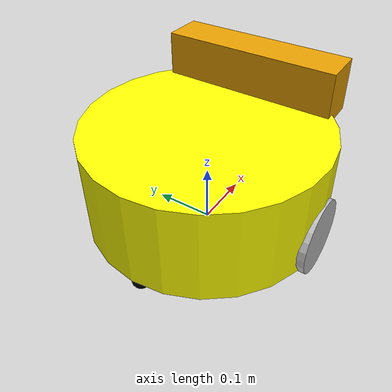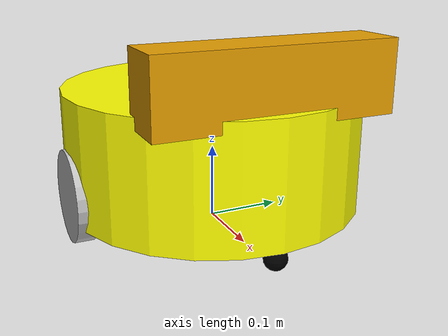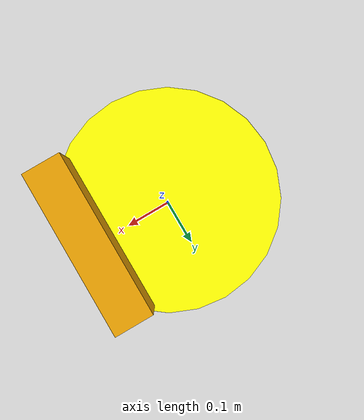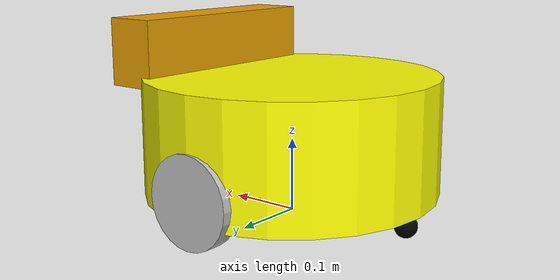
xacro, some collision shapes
<?xml version="1.0"?>
<robot name="mbot2" xmlns:xacro="http://www.ros.org/wiki/xacro">
<xacro:include filename="$(find mbot_gazebo)/urdf/mbot_base_kinect.xacro" />
<xacro:include filename="$(find mbot_gazebo)/urdf/sensors/kinect_gazebo.xacro" />

<!-- 预定义的 kinect  位置向量定义如下： -->

<xacro:property name="kinect_offset_x" value="0.15" />
<xacro:property name="kinect_offset_y" value="0" />
<xacro:property name="kinect_offset_z" value="0.11" />

<!-- 将各个传感器添加到 mbot 机器人上 -->

<joint name="kinect_joint" type="fixed">
<origin xyz="${kinect_offset_x} ${kinect_offset_y} ${kinect_offset_z}" rpy="0 0 0" />
<parent link="mbot2_base_link"/>
<child link="kinect_link"/>
</joint>

<!-- 最后通过预定义的宏添加各个传感器： -->
<xacro:kinect_camera prefix="kinect"/>

<xacro:mbot2_base_gazebo/>

</robot>

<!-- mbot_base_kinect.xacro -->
<robot name="mbot_kinect" xmlns:xacro="http://www.ros.org/wiki/xacro">

    <!-- PROPERTY LIST -->
    <xacro:property name="M_PI" value="3.1415926"/>
    <xacro:property name="base_mass"   value="1" />
    <xacro:property name="base_radius" value="0.20"/>
    <xacro:property name="base_length" value="0.16"/>

    <xacro:property name="wheel_mass"   value="0.2" />
    <xacro:property name="wheel_radius" value="0.06"/>
    <xacro:property name="wheel_length" value="0.025"/>
    <xacro:property name="wheel_joint_y" value="0.19"/>
    <xacro:property name="wheel_joint_z" value="0.05"/>

    <xacro:property name="caster_mass"    value="0.2" />
    <xacro:property name="caster_radius"  value="0.015"/> <!-- wheel_radius - ( base_length/2 - wheel_joint_z) -->
    <xacro:property name="caster_joint_x" value="0.18"/>

    <!-- Defining the colors used in this robot -->
    <material name="yellow">
     <color rgba="1 1 0 1"/>
    </material>

    <material name="black">
        <color rgba="0 0 0 0.95"/>
    </material>

    <material name="gray">
        <color rgba="0.75 0.75 0.75 1"/>
    </material>

    <!-- Macro for inertia matrix -->
    <xacro:macro name="mbot2_sphere_inertial_matrix" params="m r">
        <inertial>
            <mass value="${m}" />
            <inertia ixx="${2*m*r*r/5}" ixy="0" ixz="0"
                iyy="${2*m*r*r/5}" iyz="0"
                izz="${2*m*r*r/5}" />
        </inertial>
    </xacro:macro>

    <xacro:macro name="mbot2_cylinder_inertial_matrix" params="m r h">
        <inertial>
            <mass value="${m}" />
            <inertia ixx="${m*(3*r*r+h*h)/12}" ixy = "0" ixz = "0"
                iyy="${m*(3*r*r+h*h)/12}" iyz = "0"
                izz="${m*r*r/2}" />
        </inertial>
    </xacro:macro>

    <!-- Macro for robot wheel -->
    <xacro:macro name="mbot2_wheel" params="prefix reflect">
        <joint name="${prefix}_wheel_joint" type="continuous">
            <origin xyz="0 ${reflect*wheel_joint_y} ${-wheel_joint_z}" rpy="0 0 0"/>
            <parent link="mbot2_base_link"/>
            <child link="${prefix}_wheel_link"/>
            <axis xyz="0 1 0"/>
        </joint>

        <link name="${prefix}_wheel_link">
            <visual>
                <origin xyz="0 0 0" rpy="${M_PI/2} 0 0" />
                <geometry>
                    <cylinder radius="${wheel_radius}" length = "${wheel_length}"/>
                </geometry>
                <material name="gray" />
            </visual>
            <collision>
                <origin xyz="0 0 0" rpy="${M_PI/2} 0 0" />
                <geometry>
                    <cylinder radius="${wheel_radius}" length = "${wheel_length}"/>
                </geometry>
            </collision>
            <xacro:mbot2_cylinder_inertial_matrix  m="${wheel_mass}" r="${wheel_radius}" h="${wheel_length}" />
        </link>

        <gazebo reference="${prefix}_wheel_link">
            <material>Gazebo/Gray</material>
        </gazebo>

        <!-- Transmission is important to link the joints and the controller -->
        <transmission name="${prefix}_wheel_joint_trans">
            <type>transmission_interface/SimpleTransmission</type>
            <joint name="${prefix}_wheel_joint" >
                <hardwareInterface>hardware_interface/VelocityJointInterface</hardwareInterface>
            </joint>
            <actuator name="${prefix}_wheel_joint_motor">
                <hardwareInterface>hardware_interface/VelocityJointInterface</hardwareInterface>
                <mechanicalReduction>1</mechanicalReduction>
            </actuator>
        </transmission>
    </xacro:macro>

    <!-- Macro for robot caster -->
    <xacro:macro name="mbot2_caster" params="prefix reflect">
        <joint name="${prefix}_caster_joint" type="continuous">
            <origin xyz="${reflect*caster_joint_x} 0 ${-(base_length/2 + caster_radius)}" rpy="0 0 0"/>
            <parent link="mbot2_base_link"/>
            <child link="${prefix}_caster_link"/>
            <axis xyz="0 1 0"/>
        </joint>

        <link name="${prefix}_caster_link">
            <visual>
                <origin xyz="0 0 0" rpy="0 0 0"/>
                <geometry>
                    <sphere radius="${caster_radius}" />
                </geometry>
                <material name="black" />
            </visual>
            <collision>
                <origin xyz="0 0 0" rpy="0 0 0"/>
                <geometry>
                    <sphere radius="${caster_radius}" />
                </geometry>
            </collision>
            <xacro:mbot2_sphere_inertial_matrix  m="${caster_mass}" r="${caster_radius}" />
        </link>

        <gazebo reference="${prefix}_caster_link">
            <material>Gazebo/Black</material>
        </gazebo>
    </xacro:macro>

    <xacro:macro name="mbot2_base_gazebo">
        <link name="mbot2_base_footprint">
            <visual>
                <origin xyz="0 0 0" rpy="0 0 0" />
                <geometry>
                    <box size="0.001 0.001 0.001" />
                </geometry>
            </visual>
        </link>
        <gazebo reference="mbot2_base_footprint">
            <turnGravityOff>false</turnGravityOff>
        </gazebo>

        <joint name="mbot2_base_footprint_joint" type="fixed">
            <origin xyz="0 0 ${base_length/2 + caster_radius*2}" rpy="0 0 0" />
            <parent link="mbot2_base_footprint"/>
            <child link="mbot2_base_link" />
        </joint>

        <link name="mbot2_base_link">
            <visual>
                <origin xyz=" 0 0 0" rpy="0 0 0" />
                <geometry>
                    <cylinder length="${base_length}" radius="${base_radius}"/>
                </geometry>
                <material name="yellow" />
            </visual>
            <collision>
                <origin xyz=" 0 0 0" rpy="0 0 0" />
                <geometry>
                    <cylinder length="${base_length}" radius="${base_radius}"/>
                </geometry>
            </collision>
            <xacro:mbot2_cylinder_inertial_matrix  m="${base_mass}" r="${base_radius}" h="${base_length}" />
        </link>

        <gazebo reference="mbot2_base_link">
            <material>Gazebo/Yellow</material>
        </gazebo>

        <xacro:mbot2_wheel prefix="mbot2_left"  reflect="1"/>
        <xacro:mbot2_wheel prefix="mbot2_right" reflect="-1"/>

        <xacro:mbot2_caster prefix="mbot2_front" reflect="-1"/>
        <xacro:mbot2_caster prefix="mbot2_back"  reflect="1"/>
          <!-- controller -->
        <gazebo>
            <plugin name="differential_drive_controller2"
                    filename="libgazebo_ros_diff_drive.so">
                <rosDebugLevel>Debug</rosDebugLevel>
                <publishWheelTF>false</publishWheelTF>
                <publishOdomTF>true</publishOdomTF>
                <robotNamespace>/</robotNamespace>
                <publishTf>1</publishTf>
                <publishWheelJointState>false</publishWheelJointState>
                <alwaysOn>true</alwaysOn>
                <updateRate>10.0</updateRate>
                <legacyMode>true</legacyMode>
                <leftJoint>mbot2_left_wheel_joint</leftJoint>
                <rightJoint>mbot2_right_wheel_joint</rightJoint>
                <wheelSeparation>${wheel_joint_y*2}</wheelSeparation>
                <wheelDiameter>${2*wheel_radius}</wheelDiameter>
                <broadcastTF>1</broadcastTF>
                <wheelTorque>30</wheelTorque>
                <wheelAcceleration>1.8</wheelAcceleration>
                <commandTopic>mbot2_vel</commandTopic>
                <odometryFrame>mbot2_odom</odometryFrame>
                <odometryTopic>mbot2_odom</odometryTopic>
                <robotBaseFrame>mbot2_base_footprint</robotBaseFrame>
            </plugin>
        </gazebo>
    </xacro:macro>

</robot>

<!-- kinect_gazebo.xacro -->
<robot xmlns:xacro="http://www.ros.org/wiki/xacro" name="kinect_camera">

    <xacro:macro name="kinect_camera" params="prefix:=camera">
        <!-- Create kinect reference frame -->
        <!-- Add mesh for kinect -->
        <link name="${prefix}_link">
            <origin xyz="0 0 0" rpy="0 0 0"/>
            <visual>
                <origin xyz="0 0 0" rpy="0 0 ${M_PI/2}"/>
                <geometry>
                    <mesh filename="package://mbot_description/meshes/kinect.dae" />
                </geometry>
            </visual>
            <collision>
                <geometry>
                    <box size="0.07 0.3 0.09"/>
                </geometry>
            </collision>
        </link>

        <joint name="${prefix}_optical_joint" type="fixed">
            <origin xyz="0 0 0" rpy="-1.5708 0 -1.5708"/>
            <parent link="${prefix}_link"/>
            <child link="${prefix}_frame_optical"/>
        </joint>

        <link name="${prefix}_frame_optical"/>

        <gazebo reference="${prefix}_link">
            <sensor type="depth" name="${prefix}">
                <always_on>true</always_on>
                <update_rate>20.0</update_rate>
                <camera>
                    <horizontal_fov>${60.0*M_PI/180.0}</horizontal_fov>
                    <image>
                        <format>R8G8B8</format>
                        <width>640</width>
                        <height>480</height>
                    </image>
                    <clip>
                        <near>0.05</near>
                        <far>8.0</far>
                    </clip>
                </camera>
                <plugin name="kinect_${prefix}_controller" filename="libgazebo_ros_openni_kinect.so">
                    <cameraName>${prefix}</cameraName>
                    <alwaysOn>true</alwaysOn>
                    <updateRate>10</updateRate>
                    <imageTopicName>rgb/image_raw</imageTopicName>
                    <depthImageTopicName>depth/image_raw</depthImageTopicName>
                    <pointCloudTopicName>depth/points</pointCloudTopicName>
                    <cameraInfoTopicName>rgb/camera_info</cameraInfoTopicName>
                    <depthImageCameraInfoTopicName>depth/camera_info</depthImageCameraInfoTopicName>
                    <frameName>${prefix}_frame_optical</frameName>
                    <baseline>0.1</baseline>
                    <distortion_k1>0.0</distortion_k1>
                    <distortion_k2>0.0</distortion_k2>
                    <distortion_k3>0.0</distortion_k3>
                    <distortion_t1>0.0</distortion_t1>
                    <distortion_t2>0.0</distortion_t2>
                    <pointCloudCutoff>0.4</pointCloudCutoff>
                </plugin>
            </sensor>
        </gazebo>

    </xacro:macro>
</robot>
